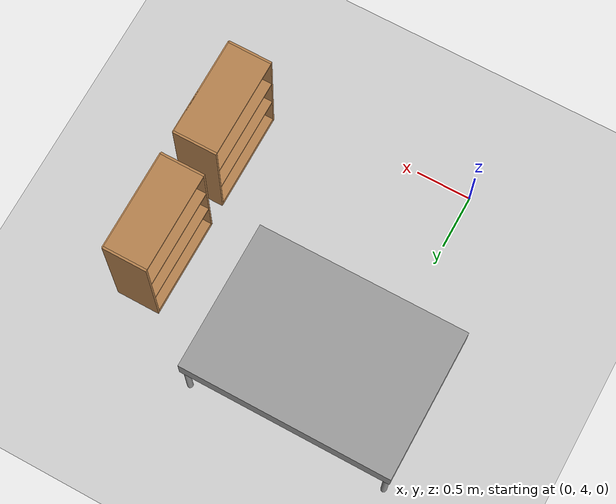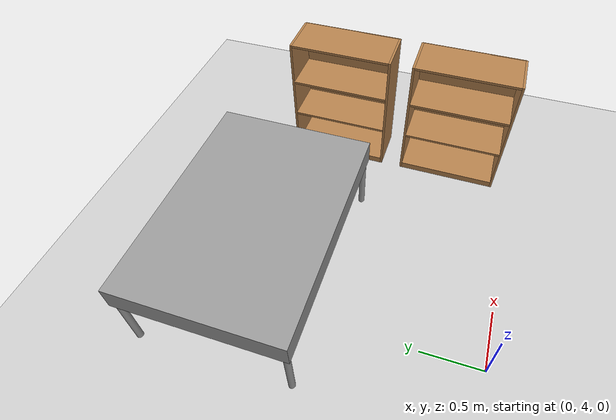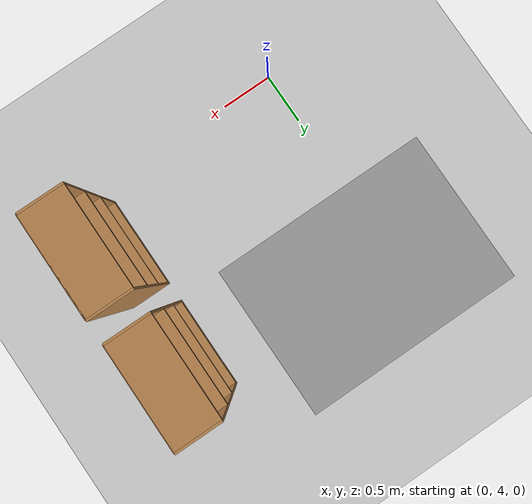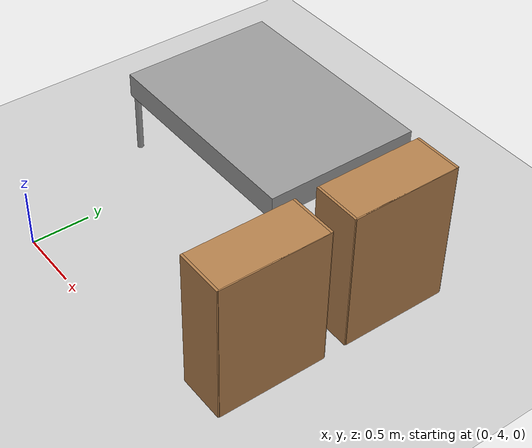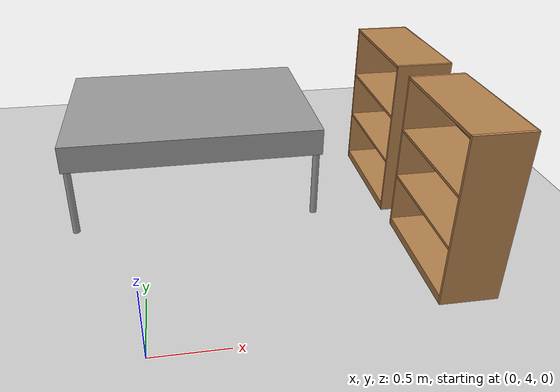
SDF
<sdf version="1.6">
 <world name="default">
  <model name="ground_plane">
   <static>1</static>
   <link name="link">
    <collision name="collision">
     <geometry><plane><normal>0 0 1</normal><size>100 100</size></plane></geometry>
     <surface>
      <contact><collide_bitmask>65535</collide_bitmask></contact>
      <friction><ode><mu>100</mu><mu2>50</mu2></ode></friction>
     </surface>
    </collision>
    <visual name="visual">
     <cast_shadows>0</cast_shadows>
     <geometry><plane><normal>0 0 1</normal><size>100 100</size></plane></geometry>
     <material>
      <script><uri>file://media/materials/scripts/gazebo.material</uri><name>Gazebo/Grey</name></script>
     </material>
    </visual>
   </link>
  </model>
  <model name="bed_clone_0">
   <link name="link_0">
    <pose>-0.152081 0.31625 0.061083 0 -0 0</pose>
    <inertial>
     <mass>1</mass>
     <inertia>
      <ixx>0.166667</ixx>
      <ixy>0</ixy>
      <ixz>0</ixz>
      <iyy>0.166667</iyy>
      <iyz>0</iyz>
      <izz>0.166667</izz>
     </inertia>
    </inertial>
    <visual name="visual">
     <geometry><box><size>1.905 1.345 0.205</size></box></geometry>
     <material>
      <lighting>1</lighting>
      <script><uri>file://media/materials/scripts/gazebo.material</uri><name>Gazebo/Grey</name></script>
      <shader type="pixel"><normal_map>__default__</normal_map></shader>
      <ambient>0.3 0.3 0.3 1</ambient>
      <diffuse>0.7 0.7 0.7 1</diffuse>
      <specular>0.01 0.01 0.01 1</specular>
      <emissive>0 0 0 1</emissive>
     </material>
    </visual>
    <collision name="collision">
     <geometry><box><size>1.905 1.345 0.205</size></box></geometry>
     <surface>
      <friction>
       <ode><mu>1</mu><mu2>1</mu2><fdir1>0 0 0</fdir1><slip1>0</slip1><slip2>0</slip2></ode>
       <torsional>
        <coefficient>1</coefficient>
        <patch_radius>0</patch_radius>
        <surface_radius>0</surface_radius>
        <use_patch_radius>1</use_patch_radius>
        <ode><slip>0</slip></ode>
       </torsional>
      </friction>
      <bounce><restitution_coefficient>0</restitution_coefficient><threshold>1e+06</threshold></bounce>
      <contact>
       <collide_without_contact>0</collide_without_contact>
       <collide_without_contact_bitmask>1</collide_without_contact_bitmask>
       <collide_bitmask>1</collide_bitmask>
       <ode>
        <soft_cfm>0</soft_cfm>
        <soft_erp>0.2</soft_erp>
        <kp>1e+13</kp>
        <kd>1</kd>
        <max_vel>0.01</max_vel>
        <min_depth>0</min_depth>
       </ode>
       <bullet>
        <split_impulse>1</split_impulse>
        <split_impulse_penetration_threshold>-0.01</split_impulse_penetration_threshold>
        <soft_cfm>0</soft_cfm>
        <soft_erp>0.2</soft_erp>
        <kp>1e+13</kp>
        <kd>1</kd>
       </bullet>
      </contact>
     </surface>
    </collision>
   </link>
   <link name="link_1">
    <pose>0.760419 0.94875 -0.305417 0 -0 0</pose>
    <inertial>
     <mass>1</mass>
     <inertia><ixx>0.145833</ixx><ixy>0</ixy><ixz>0</ixz><iyy>0.145833</iyy><iyz>0</iyz><izz>0.125</izz></inertia>
    </inertial>
    <visual name="visual">
     <geometry><cylinder><radius>0.026479</radius><length>0.528</length></cylinder></geometry>
     <material>
      <lighting>1</lighting>
      <script><uri>file://media/materials/scripts/gazebo.material</uri><name>Gazebo/Grey</name></script>
      <shader type="pixel"><normal_map>__default__</normal_map></shader>
      <ambient>0.3 0.3 0.3 1</ambient>
      <diffuse>0.7 0.7 0.7 1</diffuse>
      <specular>0.01 0.01 0.01 1</specular>
      <emissive>0 0 0 1</emissive>
     </material>
    </visual>
    <collision name="collision">
     <geometry><cylinder><radius>0.026479</radius><length>0.528</length></cylinder></geometry>
     <surface>
      <friction>
       <ode><mu>1</mu><mu2>1</mu2><fdir1>0 0 0</fdir1><slip1>0</slip1><slip2>0</slip2></ode>
       <torsional>
        <coefficient>1</coefficient>
        <patch_radius>0</patch_radius>
        <surface_radius>0</surface_radius>
        <use_patch_radius>1</use_patch_radius>
        <ode><slip>0</slip></ode>
       </torsional>
      </friction>
      <bounce><restitution_coefficient>0</restitution_coefficient><threshold>1e+06</threshold></bounce>
      <contact>
       <collide_without_contact>0</collide_without_contact>
       <collide_without_contact_bitmask>1</collide_without_contact_bitmask>
       <collide_bitmask>1</collide_bitmask>
       <ode>
        <soft_cfm>0</soft_cfm>
        <soft_erp>0.2</soft_erp>
        <kp>1e+13</kp>
        <kd>1</kd>
        <max_vel>0.01</max_vel>
        <min_depth>0</min_depth>
       </ode>
       <bullet>
        <split_impulse>1</split_impulse>
        <split_impulse_penetration_threshold>-0.01</split_impulse_penetration_threshold>
        <soft_cfm>0</soft_cfm>
        <soft_erp>0.2</soft_erp>
        <kp>1e+13</kp>
        <kd>1</kd>
       </bullet>
      </contact>
     </surface>
    </collision>
   </link>
   <link name="link_1_clone">
    <pose>0.760419 -0.31625 -0.305417 0 -0 0</pose>
    <inertial>
     <mass>1</mass>
     <inertia><ixx>0.145833</ixx><ixy>0</ixy><ixz>0</ixz><iyy>0.145833</iyy><iyz>0</iyz><izz>0.125</izz></inertia>
    </inertial>
    <visual name="visual">
     <geometry><cylinder><radius>0.026479</radius><length>0.528</length></cylinder></geometry>
     <material>
      <lighting>1</lighting>
      <script><uri>file://media/materials/scripts/gazebo.material</uri><name>Gazebo/Grey</name></script>
      <shader type="pixel"><normal_map>__default__</normal_map></shader>
      <ambient>0.3 0.3 0.3 1</ambient>
      <diffuse>0.7 0.7 0.7 1</diffuse>
      <specular>0.01 0.01 0.01 1</specular>
      <emissive>0 0 0 1</emissive>
     </material>
    </visual>
    <collision name="collision">
     <geometry><cylinder><radius>0.026479</radius><length>0.528</length></cylinder></geometry>
     <surface>
      <friction>
       <ode><mu>1</mu><mu2>1</mu2><fdir1>0 0 0</fdir1><slip1>0</slip1><slip2>0</slip2></ode>
       <torsional>
        <coefficient>1</coefficient>
        <patch_radius>0</patch_radius>
        <surface_radius>0</surface_radius>
        <use_patch_radius>1</use_patch_radius>
        <ode><slip>0</slip></ode>
       </torsional>
      </friction>
      <bounce><restitution_coefficient>0</restitution_coefficient><threshold>1e+06</threshold></bounce>
      <contact>
       <collide_without_contact>0</collide_without_contact>
       <collide_without_contact_bitmask>1</collide_without_contact_bitmask>
       <collide_bitmask>1</collide_bitmask>
       <ode>
        <soft_cfm>0</soft_cfm>
        <soft_erp>0.2</soft_erp>
        <kp>1e+13</kp>
        <kd>1</kd>
        <max_vel>0.01</max_vel>
        <min_depth>0</min_depth>
       </ode>
       <bullet>
        <split_impulse>1</split_impulse>
        <split_impulse_penetration_threshold>-0.01</split_impulse_penetration_threshold>
        <soft_cfm>0</soft_cfm>
        <soft_erp>0.2</soft_erp>
        <kp>1e+13</kp>
        <kd>1</kd>
       </bullet>
      </contact>
     </surface>
    </collision>
   </link>
   <link name="link_1_clone_clone">
    <pose>-1.06458 0.94875 -0.305417 0 -0 0</pose>
    <inertial>
     <mass>1</mass>
     <inertia><ixx>0.145833</ixx><ixy>0</ixy><ixz>0</ixz><iyy>0.145833</iyy><iyz>0</iyz><izz>0.125</izz></inertia>
    </inertial>
    <visual name="visual">
     <geometry><cylinder><radius>0.026479</radius><length>0.528</length></cylinder></geometry>
     <material>
      <lighting>1</lighting>
      <script><uri>file://media/materials/scripts/gazebo.material</uri><name>Gazebo/Grey</name></script>
      <shader type="pixel"><normal_map>__default__</normal_map></shader>
      <ambient>0.3 0.3 0.3 1</ambient>
      <diffuse>0.7 0.7 0.7 1</diffuse>
      <specular>0.01 0.01 0.01 1</specular>
      <emissive>0 0 0 1</emissive>
     </material>
    </visual>
    <collision name="collision">
     <geometry><cylinder><radius>0.026479</radius><length>0.528</length></cylinder></geometry>
     <surface>
      <friction>
       <ode><mu>1</mu><mu2>1</mu2><fdir1>0 0 0</fdir1><slip1>0</slip1><slip2>0</slip2></ode>
       <torsional>
        <coefficient>1</coefficient>
        <patch_radius>0</patch_radius>
        <surface_radius>0</surface_radius>
        <use_patch_radius>1</use_patch_radius>
        <ode><slip>0</slip></ode>
       </torsional>
      </friction>
      <bounce><restitution_coefficient>0</restitution_coefficient><threshold>1e+06</threshold></bounce>
      <contact>
       <collide_without_contact>0</collide_without_contact>
       <collide_without_contact_bitmask>1</collide_without_contact_bitmask>
       <collide_bitmask>1</collide_bitmask>
       <ode>
        <soft_cfm>0</soft_cfm>
        <soft_erp>0.2</soft_erp>
        <kp>1e+13</kp>
        <kd>1</kd>
        <max_vel>0.01</max_vel>
        <min_depth>0</min_depth>
       </ode>
       <bullet>
        <split_impulse>1</split_impulse>
        <split_impulse_penetration_threshold>-0.01</split_impulse_penetration_threshold>
        <soft_cfm>0</soft_cfm>
        <soft_erp>0.2</soft_erp>
        <kp>1e+13</kp>
        <kd>1</kd>
       </bullet>
      </contact>
     </surface>
    </collision>
   </link>
   <link name="link_1_clone_clone_clone">
    <pose>-1.06458 -0.31625 -0.305417 0 -0 0</pose>
    <inertial>
     <mass>1</mass>
     <inertia><ixx>0.145833</ixx><ixy>0</ixy><ixz>0</ixz><iyy>0.145833</iyy><iyz>0</iyz><izz>0.125</izz></inertia>
    </inertial>
    <visual name="visual">
     <geometry><cylinder><radius>0.026479</radius><length>0.528</length></cylinder></geometry>
     <material>
      <lighting>1</lighting>
      <script><uri>file://media/materials/scripts/gazebo.material</uri><name>Gazebo/Grey</name></script>
      <shader type="pixel"><normal_map>__default__</normal_map></shader>
      <ambient>0.3 0.3 0.3 1</ambient>
      <diffuse>0.7 0.7 0.7 1</diffuse>
      <specular>0.01 0.01 0.01 1</specular>
      <emissive>0 0 0 1</emissive>
     </material>
    </visual>
    <collision name="collision">
     <geometry><cylinder><radius>0.026479</radius><length>0.528</length></cylinder></geometry>
     <surface>
      <friction>
       <ode><mu>1</mu><mu2>1</mu2><fdir1>0 0 0</fdir1><slip1>0</slip1><slip2>0</slip2></ode>
       <torsional>
        <coefficient>1</coefficient>
        <patch_radius>0</patch_radius>
        <surface_radius>0</surface_radius>
        <use_patch_radius>1</use_patch_radius>
        <ode><slip>0</slip></ode>
       </torsional>
      </friction>
      <bounce><restitution_coefficient>0</restitution_coefficient><threshold>1e+06</threshold></bounce>
      <contact>
       <collide_without_contact>0</collide_without_contact>
       <collide_without_contact_bitmask>1</collide_without_contact_bitmask>
       <collide_bitmask>1</collide_bitmask>
       <ode>
        <soft_cfm>0</soft_cfm>
        <soft_erp>0.2</soft_erp>
        <kp>1e+13</kp>
        <kd>1</kd>
        <max_vel>0.01</max_vel>
        <min_depth>0</min_depth>
       </ode>
       <bullet>
        <split_impulse>1</split_impulse>
        <split_impulse_penetration_threshold>-0.01</split_impulse_penetration_threshold>
        <soft_cfm>0</soft_cfm>
        <soft_erp>0.2</soft_erp>
        <kp>1e+13</kp>
        <kd>1</kd>
       </bullet>
      </contact>
     </surface>
    </collision>
   </link>
   <joint name="link_0_JOINT_0" type="fixed">
    <parent>link_0</parent>
    <child>link_1</child>
    <physics>
     <ode><limit><cfm>0</cfm><erp>0.2</erp></limit><suspension><cfm>0</cfm><erp>0.2</erp></suspension></ode>
    </physics>
   </joint>
   <joint name="link_0_JOINT_1" type="fixed">
    <parent>link_0</parent>
    <child>link_1_clone</child>
    <physics>
     <ode><limit><cfm>0</cfm><erp>0.2</erp></limit><suspension><cfm>0</cfm><erp>0.2</erp></suspension></ode>
    </physics>
   </joint>
   <joint name="link_0_JOINT_2" type="fixed">
    <parent>link_0</parent>
    <child>link_1_clone_clone</child>
    <physics>
     <ode><limit><cfm>0</cfm><erp>0.2</erp></limit><suspension><cfm>0</cfm><erp>0.2</erp></suspension></ode>
    </physics>
   </joint>
   <joint name="link_0_JOINT_3" type="fixed">
    <parent>link_0</parent>
    <child>link_1_clone_clone_clone</child>
    <pose>-0.01 0 0 0 -0 0</pose>
    <physics>
     <ode><limit><cfm>0</cfm><erp>0.2</erp></limit><suspension><cfm>0</cfm><erp>0.2</erp></suspension></ode>
    </physics>
   </joint>
   <static>0</static>
   <pose>0.541827 5.64624 0.569417 0 -0 0.000101</pose>
  </model>
  <model name="bookshelf_clone_0">
   <static>1</static>
   <link name="link">
    <inertial><mass>1</mass></inertial>
    <collision name="back">
     <pose>0 0.005 0.6 0 -0 0</pose>
     <geometry><box><size>0.9 0.01 1.2</size></box></geometry>
    </collision>
    <visual name="visual1">
     <pose>0 0.005 0.6 0 -0 0</pose>
     <geometry><box><size>0.9 0.01 1.2</size></box></geometry>
     <material>
      <script><uri>file://media/materials/scripts/gazebo.material</uri><name>Gazebo/Wood</name></script>
     </material>
    </visual>
    <collision name="left_side">
     <pose>0.45 -0.195 0.6 0 -0 0</pose>
     <geometry><box><size>0.02 0.4 1.2</size></box></geometry>
    </collision>
    <visual name="visual2">
     <pose>0.45 -0.195 0.6 0 -0 0</pose>
     <geometry><box><size>0.02 0.4 1.2</size></box></geometry>
     <material>
      <script><uri>file://media/materials/scripts/gazebo.material</uri><name>Gazebo/Wood</name></script>
     </material>
    </visual>
    <collision name="right_side">
     <pose>-0.45 -0.195 0.6 0 -0 0</pose>
     <geometry><box><size>0.02 0.4 1.2</size></box></geometry>
    </collision>
    <visual name="visual3">
     <pose>-0.45 -0.195 0.6 0 -0 0</pose>
     <geometry><box><size>0.02 0.4 1.2</size></box></geometry>
     <material>
      <script><uri>file://media/materials/scripts/gazebo.material</uri><name>Gazebo/Wood</name></script>
     </material>
    </visual>
    <collision name="bottom">
     <pose>0 -0.195 0.03 0 -0 0</pose>
     <geometry><box><size>0.88 0.4 0.06</size></box></geometry>
    </collision>
    <visual name="visual4">
     <pose>0 -0.195 0.03 0 -0 0</pose>
     <geometry><box><size>0.88 0.4 0.06</size></box></geometry>
     <material>
      <script><uri>file://media/materials/scripts/gazebo.material</uri><name>Gazebo/Wood</name></script>
     </material>
    </visual>
    <collision name="top">
     <pose>0 -0.195 1.19 0 -0 0</pose>
     <geometry><box><size>0.88 0.4 0.02</size></box></geometry>
    </collision>
    <visual name="visual5">
     <pose>0 -0.195 1.19 0 -0 0</pose>
     <geometry><box><size>0.88 0.4 0.02</size></box></geometry>
     <material>
      <script><uri>file://media/materials/scripts/gazebo.material</uri><name>Gazebo/Wood</name></script>
     </material>
    </visual>
    <collision name="low_shelf">
     <pose>0 -0.195 0.43 0 -0 0</pose>
     <geometry><box><size>0.88 0.4 0.02</size></box></geometry>
    </collision>
    <visual name="visual6">
     <pose>0 -0.195 0.43 0 -0 0</pose>
     <geometry><box><size>0.88 0.4 0.02</size></box></geometry>
     <material>
      <script><uri>file://media/materials/scripts/gazebo.material</uri><name>Gazebo/Wood</name></script>
     </material>
    </visual>
    <collision name="high_shelf">
     <pose>0 -0.195 0.8 0 -0 0</pose>
     <geometry><box><size>0.88 0.4 0.02</size></box></geometry>
    </collision>
    <visual name="visual7">
     <pose>0 -0.195 0.8 0 -0 0</pose>
     <geometry><box><size>0.88 0.4 0.02</size></box></geometry>
     <material>
      <script><uri>file://media/materials/scripts/gazebo.material</uri><name>Gazebo/Wood</name></script>
     </material>
    </visual>
   </link>
   <pose>2.24038 4.62166 0 0 0 -1.57404</pose>
  </model>
  <model name="bookshelf_clone_1">
   <static>1</static>
   <link name="link">
    <inertial><mass>1</mass></inertial>
    <collision name="back">
     <pose>0 0.005 0.6 0 -0 0</pose>
     <geometry><box><size>0.9 0.01 1.2</size></box></geometry>
    </collision>
    <visual name="visual1">
     <pose>0 0.005 0.6 0 -0 0</pose>
     <geometry><box><size>0.9 0.01 1.2</size></box></geometry>
     <material>
      <script><uri>file://media/materials/scripts/gazebo.material</uri><name>Gazebo/Wood</name></script>
     </material>
    </visual>
    <collision name="left_side">
     <pose>0.45 -0.195 0.6 0 -0 0</pose>
     <geometry><box><size>0.02 0.4 1.2</size></box></geometry>
    </collision>
    <visual name="visual2">
     <pose>0.45 -0.195 0.6 0 -0 0</pose>
     <geometry><box><size>0.02 0.4 1.2</size></box></geometry>
     <material>
      <script><uri>file://media/materials/scripts/gazebo.material</uri><name>Gazebo/Wood</name></script>
     </material>
    </visual>
    <collision name="right_side">
     <pose>-0.45 -0.195 0.6 0 -0 0</pose>
     <geometry><box><size>0.02 0.4 1.2</size></box></geometry>
    </collision>
    <visual name="visual3">
     <pose>-0.45 -0.195 0.6 0 -0 0</pose>
     <geometry><box><size>0.02 0.4 1.2</size></box></geometry>
     <material>
      <script><uri>file://media/materials/scripts/gazebo.material</uri><name>Gazebo/Wood</name></script>
     </material>
    </visual>
    <collision name="bottom">
     <pose>0 -0.195 0.03 0 -0 0</pose>
     <geometry><box><size>0.88 0.4 0.06</size></box></geometry>
    </collision>
    <visual name="visual4">
     <pose>0 -0.195 0.03 0 -0 0</pose>
     <geometry><box><size>0.88 0.4 0.06</size></box></geometry>
     <material>
      <script><uri>file://media/materials/scripts/gazebo.material</uri><name>Gazebo/Wood</name></script>
     </material>
    </visual>
    <collision name="top">
     <pose>0 -0.195 1.19 0 -0 0</pose>
     <geometry><box><size>0.88 0.4 0.02</size></box></geometry>
    </collision>
    <visual name="visual5">
     <pose>0 -0.195 1.19 0 -0 0</pose>
     <geometry><box><size>0.88 0.4 0.02</size></box></geometry>
     <material>
      <script><uri>file://media/materials/scripts/gazebo.material</uri><name>Gazebo/Wood</name></script>
     </material>
    </visual>
    <collision name="low_shelf">
     <pose>0 -0.195 0.43 0 -0 0</pose>
     <geometry><box><size>0.88 0.4 0.02</size></box></geometry>
    </collision>
    <visual name="visual6">
     <pose>0 -0.195 0.43 0 -0 0</pose>
     <geometry><box><size>0.88 0.4 0.02</size></box></geometry>
     <material>
      <script><uri>file://media/materials/scripts/gazebo.material</uri><name>Gazebo/Wood</name></script>
     </material>
    </visual>
    <collision name="high_shelf">
     <pose>0 -0.195 0.8 0 -0 0</pose>
     <geometry><box><size>0.88 0.4 0.02</size></box></geometry>
    </collision>
    <visual name="visual7">
     <pose>0 -0.195 0.8 0 -0 0</pose>
     <geometry><box><size>0.88 0.4 0.02</size></box></geometry>
     <material>
      <script><uri>file://media/materials/scripts/gazebo.material</uri><name>Gazebo/Wood</name></script>
     </material>
    </visual>
   </link>
   <pose>2.23856 5.72681 0 0 0 -1.57404</pose>
  </model>
 </world>
</sdf>
